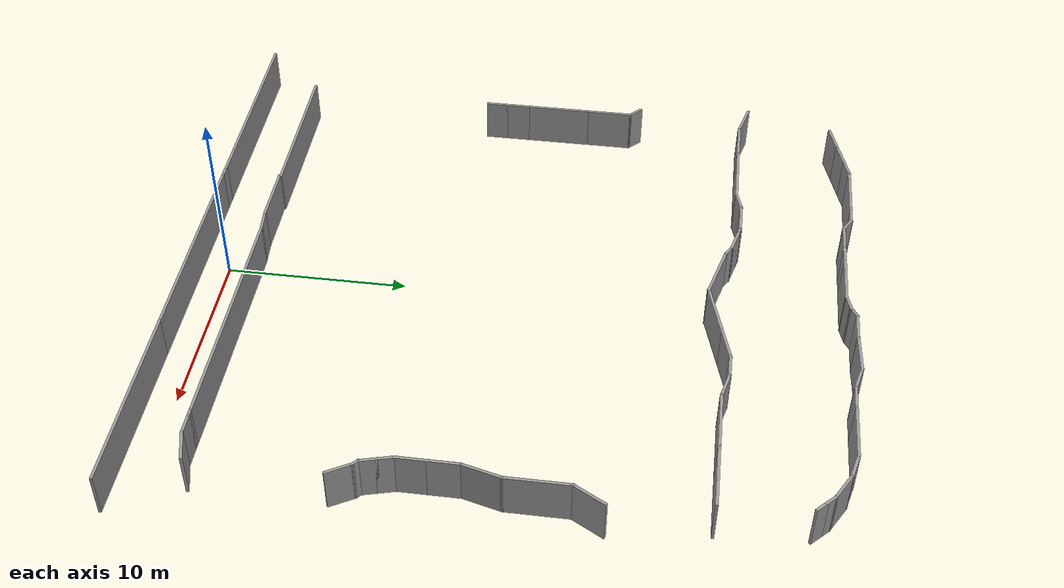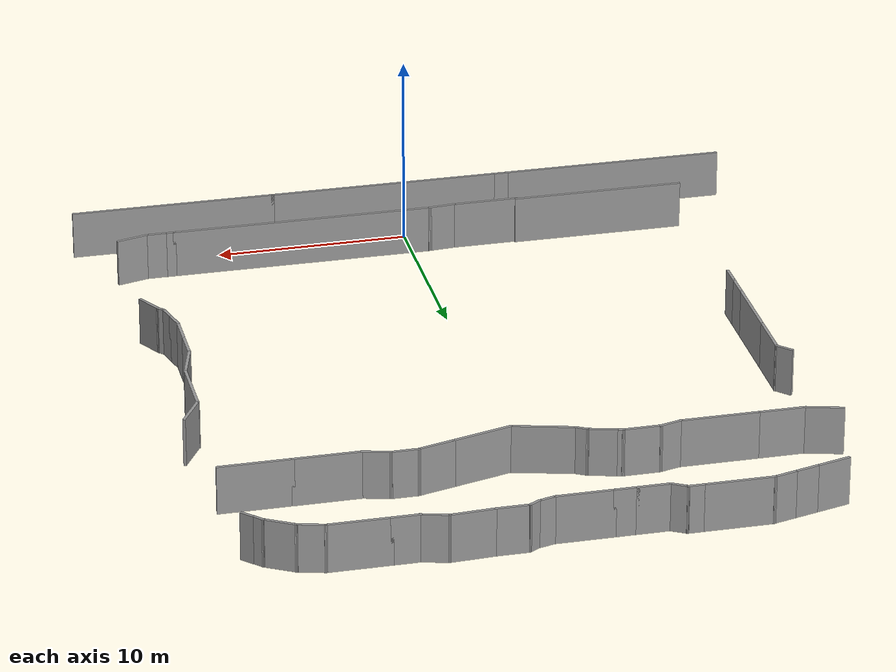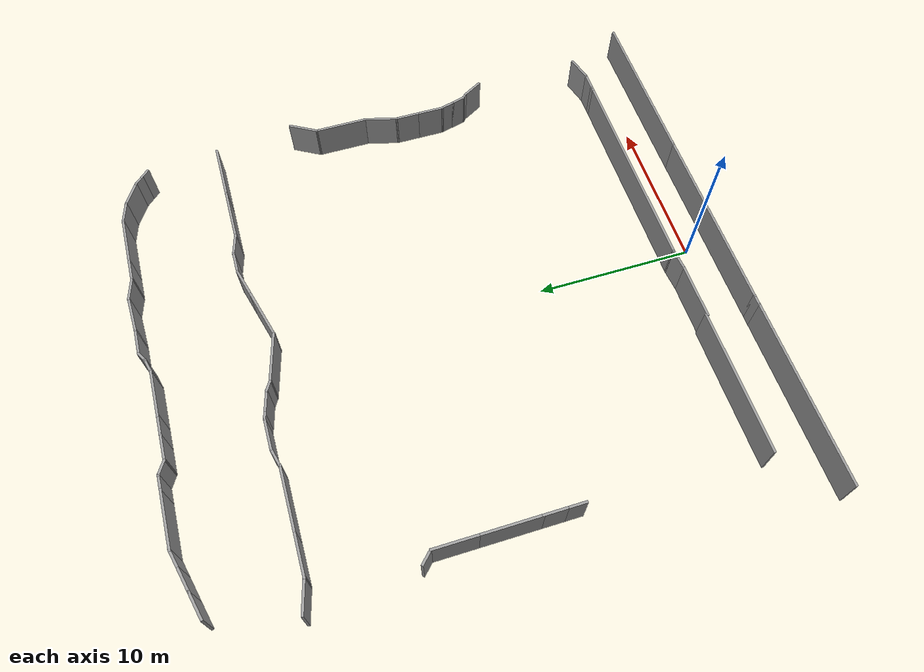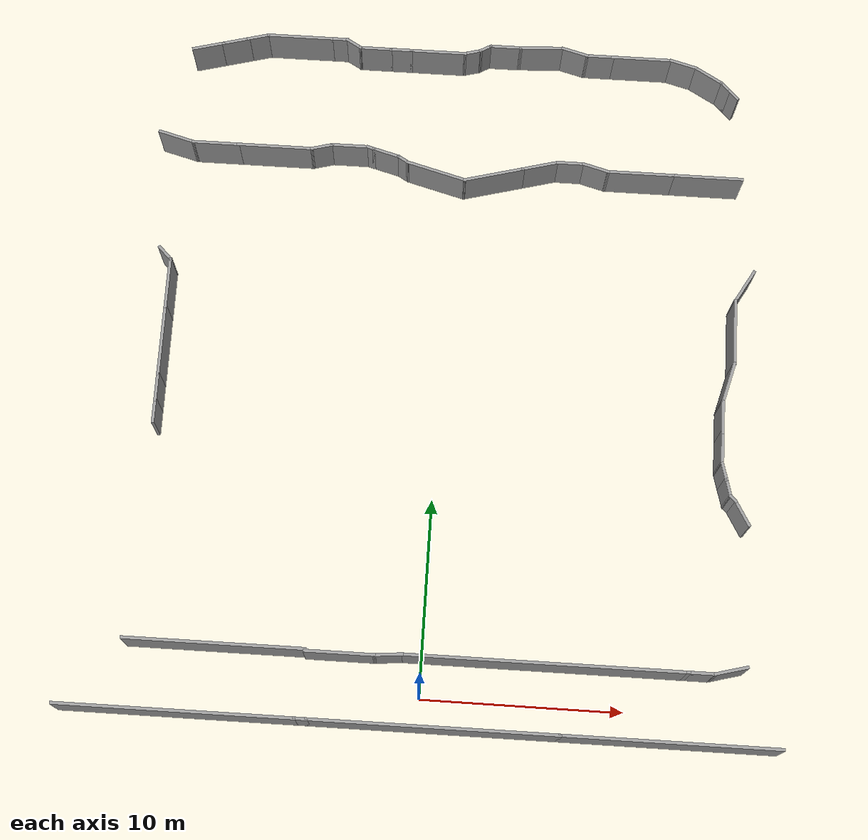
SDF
<sdf version="1.7">
 <world name="default">
  <model name="Untitled">
   <pose>0.112024 16.4674 0 0 -0 0</pose>
   <link name="Wall_10">
    <collision name="Wall_10_Collision">
     <geometry><box><size>3.50824 0.15 2.5</size></box></geometry>
     <pose>0 0 1.25 0 -0 0</pose>
    </collision>
    <visual name="Wall_10_Visual">
     <pose>0 0 1.25 0 -0 0</pose>
     <geometry><box><size>3.50824 0.15 2.5</size></box></geometry>
     <material>
      <script><uri>file://media/materials/scripts/gazebo.material</uri><name>Gazebo/Grey</name></script>
      <ambient>1 1 1 1</ambient>
     </material>
     <meta><layer>0</layer></meta>
    </visual>
    <pose>-4.08498 -14.7597 0 0 -0 0</pose>
   </link>
   <link name="Wall_12">
    <collision name="Wall_12_Collision">
     <geometry><box><size>1.49108 0.15 2.5</size></box></geometry>
     <pose>0 0 1.25 0 -0 0</pose>
    </collision>
    <visual name="Wall_12_Visual">
     <pose>0 0 1.25 0 -0 0</pose>
     <geometry><box><size>1.49108 0.15 2.5</size></box></geometry>
     <material>
      <script><uri>file://media/materials/scripts/gazebo.material</uri><name>Gazebo/Grey</name></script>
      <ambient>1 1 1 1</ambient>
     </material>
     <meta><layer>0</layer></meta>
    </visual>
    <pose>-1.73855 -14.699 0 0 -0 -3.05097</pose>
   </link>
   <link name="Wall_131">
    <collision name="Wall_131_Collision">
     <geometry><box><size>0.75 0.15 2.5</size></box></geometry>
     <pose>0 0 1.25 0 -0 0</pose>
    </collision>
    <visual name="Wall_131_Visual">
     <pose>0 0 1.25 0 -0 0</pose>
     <geometry><box><size>0.75 0.15 2.5</size></box></geometry>
     <material>
      <script><uri>file://media/materials/scripts/gazebo.material</uri><name>Gazebo/Grey</name></script>
      <ambient>1 1 1 1</ambient>
     </material>
     <meta><layer>0</layer></meta>
    </visual>
    <pose>14.4275 15.8553 0 0 -0 2.35619</pose>
   </link>
   <link name="Wall_132">
    <collision name="Wall_132_Collision">
     <geometry><box><size>0.75 0.15 2.5</size></box></geometry>
     <pose>0 0 1.25 0 -0 0</pose>
    </collision>
    <visual name="Wall_132_Visual">
     <pose>0 0 1.25 0 -0 0</pose>
     <geometry><box><size>0.75 0.15 2.5</size></box></geometry>
     <material>
      <script><uri>file://media/materials/scripts/gazebo.material</uri><name>Gazebo/Grey</name></script>
      <ambient>1 1 1 1</ambient>
     </material>
     <meta><layer>0</layer></meta>
    </visual>
    <pose>14.0032 16.2796 0 0 -0 2.35619</pose>
   </link>
   <link name="Wall_133">
    <collision name="Wall_133_Collision">
     <geometry><box><size>1.75 0.15 2.5</size></box></geometry>
     <pose>0 0 1.25 0 -0 0</pose>
    </collision>
    <visual name="Wall_133_Visual">
     <pose>0 0 1.25 0 -0 0</pose>
     <geometry><box><size>1.75 0.15 2.5</size></box></geometry>
     <material>
      <script><uri>file://media/materials/scripts/gazebo.material</uri><name>Gazebo/Grey</name></script>
      <ambient>1 1 1 1</ambient>
     </material>
     <meta><layer>0</layer></meta>
    </visual>
    <pose>13.0983 16.8917 0 0 -0 2.61799</pose>
   </link>
   <link name="Wall_134">
    <collision name="Wall_134_Collision">
     <geometry><box><size>1.5 0.15 2.5</size></box></geometry>
     <pose>0 0 1.25 0 -0 0</pose>
    </collision>
    <visual name="Wall_134_Visual">
     <pose>0 0 1.25 0 -0 0</pose>
     <geometry><box><size>1.5 0.15 2.5</size></box></geometry>
     <material>
      <script><uri>file://media/materials/scripts/gazebo.material</uri><name>Gazebo/Grey</name></script>
      <ambient>1 1 1 1</ambient>
     </material>
     <meta><layer>0</layer></meta>
    </visual>
    <pose>11.7535 17.4664 0 0 -0 2.87979</pose>
   </link>
   <link name="Wall_135">
    <collision name="Wall_135_Collision">
     <geometry><box><size>3.25 0.15 2.5</size></box></geometry>
     <pose>0 0 1.25 0 -0 0</pose>
    </collision>
    <visual name="Wall_135_Visual">
     <pose>0 0 1.25 0 -0 0</pose>
     <geometry><box><size>3.25 0.15 2.5</size></box></geometry>
     <material>
      <script><uri>file://media/materials/scripts/gazebo.material</uri><name>Gazebo/Grey</name></script>
      <ambient>1 1 1 1</ambient>
     </material>
     <meta><layer>0</layer></meta>
    </visual>
    <pose>9.55146 17.6411 0 0 -0 3.14159</pose>
   </link>
   <link name="Wall_136">
    <collision name="Wall_136_Collision">
     <geometry><box><size>1.5 0.15 2.5</size></box></geometry>
     <pose>0 0 1.25 0 -0 0</pose>
    </collision>
    <visual name="Wall_136_Visual">
     <pose>0 0 1.25 0 -0 0</pose>
     <geometry><box><size>1.5 0.15 2.5</size></box></geometry>
     <material>
      <script><uri>file://media/materials/scripts/gazebo.material</uri><name>Gazebo/Grey</name></script>
      <ambient>1 1 1 1</ambient>
     </material>
     <meta><layer>0</layer></meta>
    </visual>
    <pose>7.32646 17.6411 0 0 -0 3.14159</pose>
   </link>
   <link name="Wall_137">
    <collision name="Wall_137_Collision">
     <geometry><box><size>1.5 0.15 2.5</size></box></geometry>
     <pose>0 0 1.25 0 -0 0</pose>
    </collision>
    <visual name="Wall_137_Visual">
     <pose>0 0 1.25 0 -0 0</pose>
     <geometry><box><size>1.5 0.15 2.5</size></box></geometry>
     <material>
      <script><uri>file://media/materials/scripts/gazebo.material</uri><name>Gazebo/Grey</name></script>
      <ambient>1 1 1 1</ambient>
     </material>
     <meta><layer>0</layer></meta>
    </visual>
    <pose>5.99946 17.8158 0 0 -0 2.87979</pose>
   </link>
   <link name="Wall_14">
    <collision name="Wall_14_Collision">
     <geometry><box><size>13.75 0.15 2.5</size></box></geometry>
     <pose>0 0 1.25 0 -0 0</pose>
    </collision>
    <visual name="Wall_14_Visual">
     <pose>0 0 1.25 0 -0 0</pose>
     <geometry><box><size>13.75 0.15 2.5</size></box></geometry>
     <material>
      <script><uri>file://media/materials/scripts/gazebo.material</uri><name>Gazebo/Grey</name></script>
      <ambient>1 1 1 1</ambient>
     </material>
     <meta><layer>0</layer></meta>
    </visual>
    <pose>5.72924 -14.6384 0 0 -0 0</pose>
   </link>
   <link name="Wall_15">
    <collision name="Wall_15_Collision">
     <geometry><box><size>0.5 0.15 2.5</size></box></geometry>
     <pose>0 0 1.25 0 -0 0</pose>
    </collision>
    <visual name="Wall_15_Visual">
     <pose>0 0 1.25 0 -0 0</pose>
     <geometry><box><size>0.5 0.15 2.5</size></box></geometry>
     <material>
      <script><uri>file://media/materials/scripts/gazebo.material</uri><name>Gazebo/Grey</name></script>
      <ambient>1 1 1 1</ambient>
     </material>
     <meta><layer>0</layer></meta>
    </visual>
    <pose>12.7042 -14.6384 0 0 -0 0</pose>
   </link>
   <link name="Wall_16">
    <collision name="Wall_16_Collision">
     <geometry><box><size>1.25 0.15 2.5</size></box></geometry>
     <pose>0 0 1.25 0 -0 0</pose>
    </collision>
    <visual name="Wall_16_Visual">
     <pose>0 0 1.25 0 -0 0</pose>
     <geometry><box><size>1.25 0.15 2.5</size></box></geometry>
     <material>
      <script><uri>file://media/materials/scripts/gazebo.material</uri><name>Gazebo/Grey</name></script>
      <ambient>1 1 1 1</ambient>
     </material>
     <meta><layer>0</layer></meta>
    </visual>
    <pose>13.4292 -14.6384 0 0 -0 0</pose>
   </link>
   <link name="Wall_17">
    <collision name="Wall_17_Collision">
     <geometry><box><size>1.75 0.15 2.5</size></box></geometry>
     <pose>0 0 1.25 0 -0 0</pose>
    </collision>
    <visual name="Wall_17_Visual">
     <pose>0 0 1.25 0 -0 0</pose>
     <geometry><box><size>1.75 0.15 2.5</size></box></geometry>
     <material>
      <script><uri>file://media/materials/scripts/gazebo.material</uri><name>Gazebo/Grey</name></script>
      <ambient>1 1 1 1</ambient>
     </material>
     <meta><layer>0</layer></meta>
    </visual>
    <pose>14.752 -14.4313 0 0 -0 0.261799</pose>
   </link>
   <link name="Wall_184">
    <collision name="Wall_184_Collision">
     <geometry><box><size>1.75 0.15 2.5</size></box></geometry>
     <pose>0 0 1.25 0 -0 0</pose>
    </collision>
    <visual name="Wall_184_Visual">
     <pose>0 0 1.25 0 -0 0</pose>
     <geometry><box><size>1.75 0.15 2.5</size></box></geometry>
     <material>
      <script><uri>file://media/materials/scripts/gazebo.material</uri><name>Gazebo/Grey</name></script>
      <ambient>1 1 1 1</ambient>
     </material>
     <meta><layer>0</layer></meta>
    </visual>
    <pose>-13.4503 16.9371 0 0 -0 0.261799</pose>
   </link>
   <link name="Wall_185">
    <collision name="Wall_185_Collision">
     <geometry><box><size>1.5 0.15 2.5</size></box></geometry>
     <pose>0 0 1.25 0 -0 0</pose>
    </collision>
    <visual name="Wall_185_Visual">
     <pose>0 0 1.25 0 -0 0</pose>
     <geometry><box><size>1.5 0.15 2.5</size></box></geometry>
     <material>
      <script><uri>file://media/materials/scripts/gazebo.material</uri><name>Gazebo/Grey</name></script>
      <ambient>1 1 1 1</ambient>
     </material>
     <meta><layer>0</layer></meta>
    </visual>
    <pose>-12.0255 17.3188 0 0 -0 0.261799</pose>
   </link>
   <link name="Wall_186">
    <collision name="Wall_186_Collision">
     <geometry><box><size>1.25 0.15 2.5</size></box></geometry>
     <pose>0 0 1.25 0 -0 0</pose>
    </collision>
    <visual name="Wall_186_Visual">
     <pose>0 0 1.25 0 -0 0</pose>
     <geometry><box><size>1.25 0.15 2.5</size></box></geometry>
     <material>
      <script><uri>file://media/materials/scripts/gazebo.material</uri><name>Gazebo/Grey</name></script>
      <ambient>1 1 1 1</ambient>
     </material>
     <meta><layer>0</layer></meta>
    </visual>
    <pose>-10.8423 17.6359 0 0 -0 0.261799</pose>
   </link>
   <link name="Wall_187">
    <collision name="Wall_187_Collision">
     <geometry><box><size>3.5 0.15 2.5</size></box></geometry>
     <pose>0 0 1.25 0 -0 0</pose>
    </collision>
    <visual name="Wall_187_Visual">
     <pose>0 0 1.25 0 -0 0</pose>
     <geometry><box><size>3.5 0.15 2.5</size></box></geometry>
     <material>
      <script><uri>file://media/materials/scripts/gazebo.material</uri><name>Gazebo/Grey</name></script>
      <ambient>1 1 1 1</ambient>
     </material>
     <meta><layer>0</layer></meta>
    </visual>
    <pose>-8.63601 17.7782 0 0 -0 0</pose>
   </link>
   <link name="Wall_188">
    <collision name="Wall_188_Collision">
     <geometry><box><size>1 0.15 2.5</size></box></geometry>
     <pose>0 0 1.25 0 -0 0</pose>
    </collision>
    <visual name="Wall_188_Visual">
     <pose>0 0 1.25 0 -0 0</pose>
     <geometry><box><size>1 0.15 2.5</size></box></geometry>
     <material>
      <script><uri>file://media/materials/scripts/gazebo.material</uri><name>Gazebo/Grey</name></script>
      <ambient>1 1 1 1</ambient>
     </material>
     <meta><layer>0</layer></meta>
    </visual>
    <pose>-6.53601 17.7782 0 0 -0 0</pose>
   </link>
   <link name="Wall_189">
    <collision name="Wall_189_Collision">
     <geometry><box><size>1 0.15 2.5</size></box></geometry>
     <pose>0 0 1.25 0 -0 0</pose>
    </collision>
    <visual name="Wall_189_Visual">
     <pose>0 0 1.25 0 -0 0</pose>
     <geometry><box><size>1 0.15 2.5</size></box></geometry>
     <material>
      <script><uri>file://media/materials/scripts/gazebo.material</uri><name>Gazebo/Grey</name></script>
      <ambient>1 1 1 1</ambient>
     </material>
     <meta><layer>0</layer></meta>
    </visual>
    <pose>-5.74295 17.5657 0 0 -0 -0.523599</pose>
   </link>
   <link name="Wall_190">
    <collision name="Wall_190_Collision">
     <geometry><box><size>1.75 0.15 2.5</size></box></geometry>
     <pose>0 0 1.25 0 -0 0</pose>
    </collision>
    <visual name="Wall_190_Visual">
     <pose>0 0 1.25 0 -0 0</pose>
     <geometry><box><size>1.75 0.15 2.5</size></box></geometry>
     <material>
      <script><uri>file://media/materials/scripts/gazebo.material</uri><name>Gazebo/Grey</name></script>
      <ambient>1 1 1 1</ambient>
     </material>
     <meta><layer>0</layer></meta>
    </visual>
    <pose>-4.57489 17.3532 0 0 -0 0</pose>
   </link>
   <link name="Wall_191">
    <collision name="Wall_191_Collision">
     <geometry><box><size>1.25 0.15 2.5</size></box></geometry>
     <pose>0 0 1.25 0 -0 0</pose>
    </collision>
    <visual name="Wall_191_Visual">
     <pose>0 0 1.25 0 -0 0</pose>
     <geometry><box><size>1.25 0.15 2.5</size></box></geometry>
     <material>
      <script><uri>file://media/materials/scripts/gazebo.material</uri><name>Gazebo/Grey</name></script>
      <ambient>1 1 1 1</ambient>
     </material>
     <meta><layer>0</layer></meta>
    </visual>
    <pose>-3.22489 17.3532 0 0 -0 0</pose>
   </link>
   <link name="Wall_192">
    <collision name="Wall_192_Collision">
     <geometry><box><size>3 0.15 2.5</size></box></geometry>
     <pose>0 0 1.25 0 -0 0</pose>
    </collision>
    <visual name="Wall_192_Visual">
     <pose>0 0 1.25 0 -0 0</pose>
     <geometry><box><size>3 0.15 2.5</size></box></geometry>
     <material>
      <script><uri>file://media/materials/scripts/gazebo.material</uri><name>Gazebo/Grey</name></script>
      <ambient>1 1 1 1</ambient>
     </material>
     <meta><layer>0</layer></meta>
    </visual>
    <pose>-1.24989 17.3532 0 0 -0 0</pose>
   </link>
   <link name="Wall_193">
    <collision name="Wall_193_Collision">
     <geometry><box><size>1 0.15 2.5</size></box></geometry>
     <pose>0 0 1.25 0 -0 0</pose>
    </collision>
    <visual name="Wall_193_Visual">
     <pose>0 0 1.25 0 -0 0</pose>
     <geometry><box><size>1 0.15 2.5</size></box></geometry>
     <material>
      <script><uri>file://media/materials/scripts/gazebo.material</uri><name>Gazebo/Grey</name></script>
      <ambient>1 1 1 1</ambient>
     </material>
     <meta><layer>0</layer></meta>
    </visual>
    <pose>0.585631 17.4632 0 0 -0 0.261799</pose>
   </link>
   <link name="Wall_194">
    <collision name="Wall_194_Collision">
     <geometry><box><size>0.75 0.15 2.5</size></box></geometry>
     <pose>0 0 1.25 0 -0 0</pose>
    </collision>
    <visual name="Wall_194_Visual">
     <pose>0 0 1.25 0 -0 0</pose>
     <geometry><box><size>0.75 0.15 2.5</size></box></geometry>
     <material>
      <script><uri>file://media/materials/scripts/gazebo.material</uri><name>Gazebo/Grey</name></script>
      <ambient>1 1 1 1</ambient>
     </material>
     <meta><layer>0</layer></meta>
    </visual>
    <pose>1.25596 17.7232 0 0 -0 0.523599</pose>
   </link>
   <link name="Wall_195">
    <collision name="Wall_195_Collision">
     <geometry><box><size>1.75 0.15 2.5</size></box></geometry>
     <pose>0 0 1.25 0 -0 0</pose>
    </collision>
    <visual name="Wall_195_Visual">
     <pose>0 0 1.25 0 -0 0</pose>
     <geometry><box><size>1.75 0.15 2.5</size></box></geometry>
     <material>
      <script><uri>file://media/materials/scripts/gazebo.material</uri><name>Gazebo/Grey</name></script>
      <ambient>1 1 1 1</ambient>
     </material>
     <meta><layer>0</layer></meta>
    </visual>
    <pose>2.31576 17.8732 0 0 -0 0</pose>
   </link>
   <link name="Wall_196">
    <collision name="Wall_196_Collision">
     <geometry><box><size>2.38478 0.15 2.5</size></box></geometry>
     <pose>0 0 1.25 0 -0 0</pose>
    </collision>
    <visual name="Wall_196_Visual">
     <pose>0 0 1.25 0 -0 0</pose>
     <geometry><box><size>2.38478 0.15 2.5</size></box></geometry>
     <material>
      <script><uri>file://media/materials/scripts/gazebo.material</uri><name>Gazebo/Grey</name></script>
      <ambient>1 1 1 1</ambient>
     </material>
     <meta><layer>0</layer></meta>
    </visual>
    <pose>4.23161 17.9319 0 0 -0 0.052521</pose>
   </link>
   <link name="Wall_2">
    <collision name="Wall_2_Collision">
     <geometry><box><size>0.75 0.15 2.5</size></box></geometry>
     <pose>0 0 1.25 0 -0 0</pose>
    </collision>
    <visual name="Wall_2_Visual">
     <pose>0 0 1.25 0 -0 0</pose>
     <geometry><box><size>0.75 0.15 2.5</size></box></geometry>
     <material>
      <script><uri>file://media/materials/scripts/gazebo.material</uri><name>Gazebo/Grey</name></script>
      <ambient>1 1 1 1</ambient>
     </material>
     <meta><layer>0</layer></meta>
    </visual>
    <pose>-5.72202 -18.0074 0 0 -0 0</pose>
   </link>
   <link name="Wall_21">
    <collision name="Wall_21_Collision">
     <geometry><box><size>9 0.15 2.5</size></box></geometry>
     <pose>0 0 1.25 0 -0 0</pose>
    </collision>
    <visual name="Wall_21_Visual">
     <pose>0 0 1.25 0 -0 0</pose>
     <geometry><box><size>9 0.15 2.5</size></box></geometry>
     <material>
      <script><uri>file://media/materials/scripts/gazebo.material</uri><name>Gazebo/Grey</name></script>
      <ambient>1 1 1 1</ambient>
     </material>
     <meta><layer>0</layer></meta>
    </visual>
    <pose>-10.1886 -14.6788 0 0 -0 3.14159</pose>
   </link>
   <link name="Wall_4">
    <collision name="Wall_4_Collision">
     <geometry><box><size>12.25 0.15 2.5</size></box></geometry>
     <pose>0 0 1.25 0 -0 0</pose>
    </collision>
    <visual name="Wall_4_Visual">
     <pose>0 0 1.25 0 -0 0</pose>
     <geometry><box><size>12.25 0.15 2.5</size></box></geometry>
     <material>
      <script><uri>file://media/materials/scripts/gazebo.material</uri><name>Gazebo/Grey</name></script>
      <ambient>1 1 1 1</ambient>
     </material>
     <meta><layer>0</layer></meta>
    </visual>
    <pose>0.627976 -18.0074 0 0 -0 0</pose>
   </link>
   <link name="Wall_42">
    <collision name="Wall_42_Collision">
     <geometry><box><size>1.5 0.15 2.5</size></box></geometry>
     <pose>0 0 1.25 0 -0 0</pose>
    </collision>
    <visual name="Wall_42_Visual">
     <pose>0 0 1.25 0 -0 0</pose>
     <geometry><box><size>1.5 0.15 2.5</size></box></geometry>
     <material>
      <script><uri>file://media/materials/scripts/gazebo.material</uri><name>Gazebo/Grey</name></script>
      <ambient>1 1 1 1</ambient>
     </material>
     <meta><layer>0</layer></meta>
    </visual>
    <pose>15.1733 -6.68027 0 0 -0 2.0944</pose>
   </link>
   <link name="Wall_43">
    <collision name="Wall_43_Collision">
     <geometry><box><size>0.5 0.15 2.5</size></box></geometry>
     <pose>0 0 1.25 0 -0 0</pose>
    </collision>
    <visual name="Wall_43_Visual">
     <pose>0 0 1.25 0 -0 0</pose>
     <geometry><box><size>0.5 0.15 2.5</size></box></geometry>
     <material>
      <script><uri>file://media/materials/scripts/gazebo.material</uri><name>Gazebo/Grey</name></script>
      <ambient>1 1 1 1</ambient>
     </material>
     <meta><layer>0</layer></meta>
    </visual>
    <pose>14.712 -5.97196 0 0 -0 2.35619</pose>
   </link>
   <link name="Wall_44">
    <collision name="Wall_44_Collision">
     <geometry><box><size>1 0.15 2.5</size></box></geometry>
     <pose>0 0 1.25 0 -0 0</pose>
    </collision>
    <visual name="Wall_44_Visual">
     <pose>0 0 1.25 0 -0 0</pose>
     <geometry><box><size>1 0.15 2.5</size></box></geometry>
     <material>
      <script><uri>file://media/materials/scripts/gazebo.material</uri><name>Gazebo/Grey</name></script>
      <ambient>1 1 1 1</ambient>
     </material>
     <meta><layer>0</layer></meta>
    </visual>
    <pose>14.4783 -5.4377 0 0 -0 1.8326</pose>
   </link>
   <link name="Wall_46">
    <collision name="Wall_46_Collision">
     <geometry><box><size>1 0.15 2.5</size></box></geometry>
     <pose>0 0 1.25 0 -0 0</pose>
    </collision>
    <visual name="Wall_46_Visual">
     <pose>0 0 1.25 0 -0 0</pose>
     <geometry><box><size>1 0.15 2.5</size></box></geometry>
     <material>
      <script><uri>file://media/materials/scripts/gazebo.material</uri><name>Gazebo/Grey</name></script>
      <ambient>1 1 1 1</ambient>
     </material>
     <meta><layer>0</layer></meta>
    </visual>
    <pose>14.2583 -4.61666 0 0 -0 1.8326</pose>
   </link>
   <link name="Wall_47">
    <collision name="Wall_47_Collision">
     <geometry><box><size>1.75 0.15 2.5</size></box></geometry>
     <pose>0 0 1.25 0 -0 0</pose>
    </collision>
    <visual name="Wall_47_Visual">
     <pose>0 0 1.25 0 -0 0</pose>
     <geometry><box><size>1.75 0.15 2.5</size></box></geometry>
     <material>
      <script><uri>file://media/materials/scripts/gazebo.material</uri><name>Gazebo/Grey</name></script>
      <ambient>1 1 1 1</ambient>
     </material>
     <meta><layer>0</layer></meta>
    </visual>
    <pose>14.1483 -3.40614 0 0 -0 1.5708</pose>
   </link>
   <link name="Wall_48">
    <collision name="Wall_48_Collision">
     <geometry><box><size>1.75 0.15 2.5</size></box></geometry>
     <pose>0 0 1.25 0 -0 0</pose>
    </collision>
    <visual name="Wall_48_Visual">
     <pose>0 0 1.25 0 -0 0</pose>
     <geometry><box><size>1.75 0.15 2.5</size></box></geometry>
     <material>
      <script><uri>file://media/materials/scripts/gazebo.material</uri><name>Gazebo/Grey</name></script>
      <ambient>1 1 1 1</ambient>
     </material>
     <meta><layer>0</layer></meta>
    </visual>
    <pose>14.1483 -1.80614 0 0 -0 1.5708</pose>
   </link>
   <link name="Wall_49">
    <collision name="Wall_49_Collision">
     <geometry><box><size>2.25 0.15 2.5</size></box></geometry>
     <pose>0 0 1.25 0 -0 0</pose>
    </collision>
    <visual name="Wall_49_Visual">
     <pose>0 0 1.25 0 -0 0</pose>
     <geometry><box><size>2.25 0.15 2.5</size></box></geometry>
     <material>
      <script><uri>file://media/materials/scripts/gazebo.material</uri><name>Gazebo/Grey</name></script>
      <ambient>1 1 1 1</ambient>
     </material>
     <meta><layer>0</layer></meta>
    </visual>
    <pose>14.42 0.008079 0 0 -0 1.309</pose>
   </link>
   <link name="Wall_5">
    <collision name="Wall_5_Collision">
     <geometry><box><size>10.75 0.15 2.5</size></box></geometry>
     <pose>0 0 1.25 0 -0 0</pose>
    </collision>
    <visual name="Wall_5_Visual">
     <pose>0 0 1.25 0 -0 0</pose>
     <geometry><box><size>10.75 0.15 2.5</size></box></geometry>
     <material>
      <script><uri>file://media/materials/scripts/gazebo.material</uri><name>Gazebo/Grey</name></script>
      <ambient>1 1 1 1</ambient>
     </material>
     <meta><layer>0</layer></meta>
    </visual>
    <pose>11.978 -18.0074 0 0 -0 0</pose>
   </link>
   <link name="Wall_50">
    <collision name="Wall_50_Collision">
     <geometry><box><size>3.5 0.15 2.5</size></box></geometry>
     <pose>0 0 1.25 0 -0 0</pose>
    </collision>
    <visual name="Wall_50_Visual">
     <pose>0 0 1.25 0 -0 0</pose>
     <geometry><box><size>3.5 0.15 2.5</size></box></geometry>
     <material>
      <script><uri>file://media/materials/scripts/gazebo.material</uri><name>Gazebo/Grey</name></script>
      <ambient>1 1 1 1</ambient>
     </material>
     <meta><layer>0</layer></meta>
    </visual>
    <pose>14.6918 2.6973 0 0 -0 1.5708</pose>
   </link>
   <link name="Wall_51">
    <collision name="Wall_51_Collision">
     <geometry><box><size>2 0.15 2.5</size></box></geometry>
     <pose>0 0 1.25 0 -0 0</pose>
    </collision>
    <visual name="Wall_51_Visual">
     <pose>0 0 1.25 0 -0 0</pose>
     <geometry><box><size>2 0.15 2.5</size></box></geometry>
     <material>
      <script><uri>file://media/materials/scripts/gazebo.material</uri><name>Gazebo/Grey</name></script>
      <ambient>1 1 1 1</ambient>
     </material>
     <meta><layer>0</layer></meta>
    </visual>
    <pose>15.1543 5.17337 0 0 -0 1.0472</pose>
   </link>
   <link name="Wall_58">
    <collision name="Wall_58_Collision">
     <geometry><box><size>3.75 0.15 2.5</size></box></geometry>
     <pose>0 0 1.25 0 -0 0</pose>
    </collision>
    <visual name="Wall_58_Visual">
     <pose>0 0 1.25 0 -0 0</pose>
     <geometry><box><size>3.75 0.15 2.5</size></box></geometry>
     <material>
      <script><uri>file://media/materials/scripts/gazebo.material</uri><name>Gazebo/Grey</name></script>
      <ambient>1 1 1 1</ambient>
     </material>
     <meta><layer>0</layer></meta>
    </visual>
    <pose>13.1435 11.0608 0 0 -0 3.14159</pose>
   </link>
   <link name="Wall_59">
    <collision name="Wall_59_Collision">
     <geometry><box><size>3.5 0.15 2.5</size></box></geometry>
     <pose>0 0 1.25 0 -0 0</pose>
    </collision>
    <visual name="Wall_59_Visual">
     <pose>0 0 1.25 0 -0 0</pose>
     <geometry><box><size>3.5 0.15 2.5</size></box></geometry>
     <material>
      <script><uri>file://media/materials/scripts/gazebo.material</uri><name>Gazebo/Grey</name></script>
      <ambient>1 1 1 1</ambient>
     </material>
     <meta><layer>0</layer></meta>
    </visual>
    <pose>9.66854 11.0608 0 0 -0 3.14159</pose>
   </link>
   <link name="Wall_60">
    <collision name="Wall_60_Collision">
     <geometry><box><size>1.5 0.15 2.5</size></box></geometry>
     <pose>0 0 1.25 0 -0 0</pose>
    </collision>
    <visual name="Wall_60_Visual">
     <pose>0 0 1.25 0 -0 0</pose>
     <geometry><box><size>1.5 0.15 2.5</size></box></geometry>
     <material>
      <script><uri>file://media/materials/scripts/gazebo.material</uri><name>Gazebo/Grey</name></script>
      <ambient>1 1 1 1</ambient>
     </material>
     <meta><layer>0</layer></meta>
    </visual>
    <pose>7.34154 11.2355 0 0 -0 2.87979</pose>
   </link>
   <link name="Wall_61">
    <collision name="Wall_61_Collision">
     <geometry><box><size>1.5 0.15 2.5</size></box></geometry>
     <pose>0 0 1.25 0 -0 0</pose>
    </collision>
    <visual name="Wall_61_Visual">
     <pose>0 0 1.25 0 -0 0</pose>
     <geometry><box><size>1.5 0.15 2.5</size></box></geometry>
     <material>
      <script><uri>file://media/materials/scripts/gazebo.material</uri><name>Gazebo/Grey</name></script>
      <ambient>1 1 1 1</ambient>
     </material>
     <meta><layer>0</layer></meta>
    </visual>
    <pose>6.01454 11.4102 0 0 -0 3.14159</pose>
   </link>
   <link name="Wall_62">
    <collision name="Wall_62_Collision">
     <geometry><box><size>2 0.15 2.5</size></box></geometry>
     <pose>0 0 1.25 0 -0 0</pose>
    </collision>
    <visual name="Wall_62_Visual">
     <pose>0 0 1.25 0 -0 0</pose>
     <geometry><box><size>2 0.15 2.5</size></box></geometry>
     <material>
      <script><uri>file://media/materials/scripts/gazebo.material</uri><name>Gazebo/Grey</name></script>
      <ambient>1 1 1 1</ambient>
     </material>
     <meta><layer>0</layer></meta>
    </visual>
    <pose>4.44605 11.1708 0 0 -0 -2.87979</pose>
   </link>
   <link name="Wall_63">
    <collision name="Wall_63_Collision">
     <geometry><box><size>3.25 0.15 2.5</size></box></geometry>
     <pose>0 0 1.25 0 -0 0</pose>
    </collision>
    <visual name="Wall_63_Visual">
     <pose>0 0 1.25 0 -0 0</pose>
     <geometry><box><size>3.25 0.15 2.5</size></box></geometry>
     <material>
      <script><uri>file://media/materials/scripts/gazebo.material</uri><name>Gazebo/Grey</name></script>
      <ambient>1 1 1 1</ambient>
     </material>
     <meta><layer>0</layer></meta>
    </visual>
    <pose>2.05539 10.5302 0 0 -0 -2.87979</pose>
   </link>
   <link name="Wall_64">
    <collision name="Wall_64_Collision">
     <geometry><box><size>3.25 0.15 2.5</size></box></geometry>
     <pose>0 0 1.25 0 -0 0</pose>
    </collision>
    <visual name="Wall_64_Visual">
     <pose>0 0 1.25 0 -0 0</pose>
     <geometry><box><size>3.25 0.15 2.5</size></box></geometry>
     <material>
      <script><uri>file://media/materials/scripts/gazebo.material</uri><name>Gazebo/Grey</name></script>
      <ambient>1 1 1 1</ambient>
     </material>
     <meta><layer>0</layer></meta>
    </visual>
    <pose>-0.938982 10.5302 0 0 -0 2.87979</pose>
   </link>
   <link name="Wall_65">
    <collision name="Wall_65_Collision">
     <geometry><box><size>0.75 0.15 2.5</size></box></geometry>
     <pose>0 0 1.25 0 -0 0</pose>
    </collision>
    <visual name="Wall_65_Visual">
     <pose>0 0 1.25 0 -0 0</pose>
     <geometry><box><size>0.75 0.15 2.5</size></box></geometry>
     <material>
      <script><uri>file://media/materials/scripts/gazebo.material</uri><name>Gazebo/Grey</name></script>
      <ambient>1 1 1 1</ambient>
     </material>
     <meta><layer>0</layer></meta>
    </visual>
    <pose>-2.69597 11.0814 0 0 -0 2.61799</pose>
   </link>
   <link name="Wall_66">
    <collision name="Wall_66_Collision">
     <geometry><box><size>1.5 0.15 2.5</size></box></geometry>
     <pose>0 0 1.25 0 -0 0</pose>
    </collision>
    <visual name="Wall_66_Visual">
     <pose>0 0 1.25 0 -0 0</pose>
     <geometry><box><size>1.5 0.15 2.5</size></box></geometry>
     <material>
      <script><uri>file://media/materials/scripts/gazebo.material</uri><name>Gazebo/Grey</name></script>
      <ambient>1 1 1 1</ambient>
     </material>
     <meta><layer>0</layer></meta>
    </visual>
    <pose>-3.60778 11.4061 0 0 -0 2.87979</pose>
   </link>
   <link name="Wall_67">
    <collision name="Wall_67_Collision">
     <geometry><box><size>0.5 0.15 2.5</size></box></geometry>
     <pose>0 0 1.25 0 -0 0</pose>
    </collision>
    <visual name="Wall_67_Visual">
     <pose>0 0 1.25 0 -0 0</pose>
     <geometry><box><size>0.5 0.15 2.5</size></box></geometry>
     <material>
      <script><uri>file://media/materials/scripts/gazebo.material</uri><name>Gazebo/Grey</name></script>
      <ambient>1 1 1 1</ambient>
     </material>
     <meta><layer>0</layer></meta>
    </visual>
    <pose>-4.42882 11.6261 0 0 -0 2.87979</pose>
   </link>
   <link name="Wall_68">
    <collision name="Wall_68_Collision">
     <geometry><box><size>2 0.15 2.5</size></box></geometry>
     <pose>0 0 1.25 0 -0 0</pose>
    </collision>
    <visual name="Wall_68_Visual">
     <pose>0 0 1.25 0 -0 0</pose>
     <geometry><box><size>2 0.15 2.5</size></box></geometry>
     <material>
      <script><uri>file://media/materials/scripts/gazebo.material</uri><name>Gazebo/Grey</name></script>
      <ambient>1 1 1 1</ambient>
     </material>
     <meta><layer>0</layer></meta>
    </visual>
    <pose>-5.52286 11.6714 0 0 -0 3.14159</pose>
   </link>
   <link name="Wall_69">
    <collision name="Wall_69_Collision">
     <geometry><box><size>1.25 0.15 2.5</size></box></geometry>
     <pose>0 0 1.25 0 -0 0</pose>
    </collision>
    <visual name="Wall_69_Visual">
     <pose>0 0 1.25 0 -0 0</pose>
     <geometry><box><size>1.25 0.15 2.5</size></box></geometry>
     <material>
      <script><uri>file://media/materials/scripts/gazebo.material</uri><name>Gazebo/Grey</name></script>
      <ambient>1 1 1 1</ambient>
     </material>
     <meta><layer>0</layer></meta>
    </visual>
    <pose>-6.97912 11.529 0 0 -0 -2.87979</pose>
   </link>
   <link name="Wall_7">
    <collision name="Wall_7_Collision">
     <geometry><box><size>11.75 0.15 2.5</size></box></geometry>
     <pose>0 0 1.25 0 -0 0</pose>
    </collision>
    <visual name="Wall_7_Visual">
     <pose>0 0 1.25 0 -0 0</pose>
     <geometry><box><size>11.75 0.15 2.5</size></box></geometry>
     <material>
      <script><uri>file://media/materials/scripts/gazebo.material</uri><name>Gazebo/Grey</name></script>
      <ambient>1 1 1 1</ambient>
     </material>
     <meta><layer>0</layer></meta>
    </visual>
    <pose>-11.822 -18.0074 0 0 -0 3.14159</pose>
   </link>
   <link name="Wall_70">
    <collision name="Wall_70_Collision">
     <geometry><box><size>4 0.15 2.5</size></box></geometry>
     <pose>0 0 1.25 0 -0 0</pose>
    </collision>
    <visual name="Wall_70_Visual">
     <pose>0 0 1.25 0 -0 0</pose>
     <geometry><box><size>4 0.15 2.5</size></box></geometry>
     <material>
      <script><uri>file://media/materials/scripts/gazebo.material</uri><name>Gazebo/Grey</name></script>
      <ambient>1 1 1 1</ambient>
     </material>
     <meta><layer>0</layer></meta>
    </visual>
    <pose>-9.43538 11.3867 0 0 -0 3.14159</pose>
   </link>
   <link name="Wall_71">
    <collision name="Wall_71_Collision">
     <geometry><box><size>2.5 0.15 2.5</size></box></geometry>
     <pose>0 0 1.25 0 -0 0</pose>
    </collision>
    <visual name="Wall_71_Visual">
     <pose>0 0 1.25 0 -0 0</pose>
     <geometry><box><size>2.5 0.15 2.5</size></box></geometry>
     <material>
      <script><uri>file://media/materials/scripts/gazebo.material</uri><name>Gazebo/Grey</name></script>
      <ambient>1 1 1 1</ambient>
     </material>
     <meta><layer>0</layer></meta>
    </visual>
    <pose>-12.5354 11.3867 0 0 -0 3.14159</pose>
   </link>
   <link name="Wall_72">
    <collision name="Wall_72_Collision">
     <geometry><box><size>2 0.15 2.5</size></box></geometry>
     <pose>0 0 1.25 0 -0 0</pose>
    </collision>
    <visual name="Wall_72_Visual">
     <pose>0 0 1.25 0 -0 0</pose>
     <geometry><box><size>2 0.15 2.5</size></box></geometry>
     <material>
      <script><uri>file://media/materials/scripts/gazebo.material</uri><name>Gazebo/Grey</name></script>
      <ambient>1 1 1 1</ambient>
     </material>
     <meta><layer>0</layer></meta>
    </visual>
    <pose>-14.6039 11.6261 0 0 -0 2.87979</pose>
   </link>
   <link name="Wall_82">
    <collision name="Wall_82_Collision">
     <geometry><box><size>1 0.15 2.5</size></box></geometry>
     <pose>0 0 1.25 0 -0 0</pose>
    </collision>
    <visual name="Wall_82_Visual">
     <pose>0 0 1.25 0 -0 0</pose>
     <geometry><box><size>1 0.15 2.5</size></box></geometry>
     <material>
      <script><uri>file://media/materials/scripts/gazebo.material</uri><name>Gazebo/Grey</name></script>
      <ambient>1 1 1 1</ambient>
     </material>
     <meta><layer>0</layer></meta>
    </visual>
    <pose>-14.5466 5.11556 0 0 -0 -0.785398</pose>
   </link>
   <link name="Wall_83">
    <collision name="Wall_83_Collision">
     <geometry><box><size>2.75 0.15 2.5</size></box></geometry>
     <pose>0 0 1.25 0 -0 0</pose>
    </collision>
    <visual name="Wall_83_Visual">
     <pose>0 0 1.25 0 -0 0</pose>
     <geometry><box><size>2.75 0.15 2.5</size></box></geometry>
     <material>
      <script><uri>file://media/materials/scripts/gazebo.material</uri><name>Gazebo/Grey</name></script>
      <ambient>1 1 1 1</ambient>
     </material>
     <meta><layer>0</layer></meta>
    </visual>
    <pose>-14.246 3.51504 0 0 -0 -1.5708</pose>
   </link>
   <link name="Wall_84">
    <collision name="Wall_84_Collision">
     <geometry><box><size>3.75 0.15 2.5</size></box></geometry>
     <pose>0 0 1.25 0 -0 0</pose>
    </collision>
    <visual name="Wall_84_Visual">
     <pose>0 0 1.25 0 -0 0</pose>
     <geometry><box><size>3.75 0.15 2.5</size></box></geometry>
     <material>
      <script><uri>file://media/materials/scripts/gazebo.material</uri><name>Gazebo/Grey</name></script>
      <ambient>1 1 1 1</ambient>
     </material>
     <meta><layer>0</layer></meta>
    </visual>
    <pose>-14.246 0.41504 0 0 -0 -1.5708</pose>
   </link>
   <link name="Wall_85">
    <collision name="Wall_85_Collision">
     <geometry><box><size>1.5 0.15 2.5</size></box></geometry>
     <pose>0 0 1.25 0 -0 0</pose>
    </collision>
    <visual name="Wall_85_Visual">
     <pose>0 0 1.25 0 -0 0</pose>
     <geometry><box><size>1.5 0.15 2.5</size></box></geometry>
     <material>
      <script><uri>file://media/materials/scripts/gazebo.material</uri><name>Gazebo/Grey</name></script>
      <ambient>1 1 1 1</ambient>
     </material>
     <meta><layer>0</layer></meta>
    </visual>
    <pose>-14.246 -2.05996 0 0 -0 -1.5708</pose>
   </link>
   <link name="Wall_86">
    <collision name="Wall_86_Collision">
     <geometry><box><size>1.25 0.15 2.5</size></box></geometry>
     <pose>0 0 1.25 0 -0 0</pose>
    </collision>
    <visual name="Wall_86_Visual">
     <pose>0 0 1.25 0 -0 0</pose>
     <geometry><box><size>1.25 0.15 2.5</size></box></geometry>
     <material>
      <script><uri>file://media/materials/scripts/gazebo.material</uri><name>Gazebo/Grey</name></script>
      <ambient>1 1 1 1</ambient>
     </material>
     <meta><layer>0</layer></meta>
    </visual>
    <pose>-14.246 -3.28496 0 0 -0 -1.5708</pose>
   </link>
   <static>1</static>
  </model>
 </world>
</sdf>
